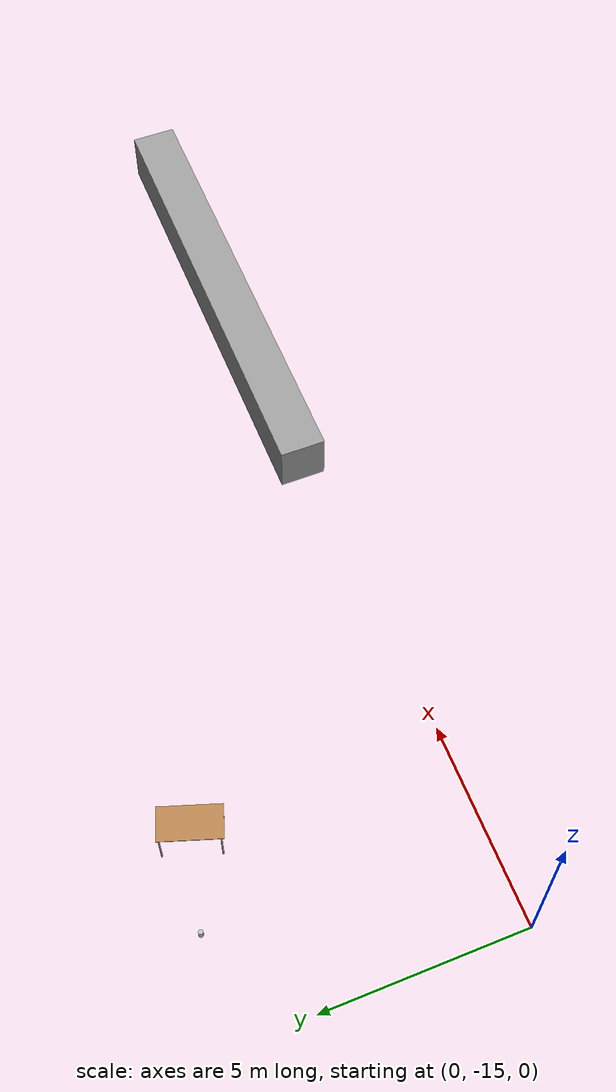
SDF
<sdf version="1.7">
 <world name="default">
  <model name="table_clone_clone">
   <static>1</static>
   <link name="link">
    <collision name="surface">
     <pose>0 0 1 0 -0 0</pose>
     <geometry><box><size>1.5 0.8 0.03</size></box></geometry>
     <surface><friction><ode><mu>0.6</mu><mu2>0.6</mu2></ode></friction></surface>
    </collision>
    <visual name="visual1">
     <pose>0 0 1 0 -0 0</pose>
     <geometry><box><size>1.5 0.8 0.03</size></box></geometry>
     <material>
      <script><uri>file://media/materials/scripts/gazebo.material</uri><name>Gazebo/Wood</name></script>
     </material>
    </visual>
    <collision name="front_left_leg">
     <pose>0.68 0.38 0.5 0 -0 0</pose>
     <geometry><cylinder><radius>0.02</radius><length>1</length></cylinder></geometry>
    </collision>
    <visual name="front_left_leg">
     <pose>0.68 0.38 0.5 0 -0 0</pose>
     <geometry><cylinder><radius>0.02</radius><length>1</length></cylinder></geometry>
     <material>
      <script><uri>file://media/materials/scripts/gazebo.material</uri><name>Gazebo/Grey</name></script>
     </material>
    </visual>
    <collision name="front_right_leg">
     <pose>0.68 -0.38 0.5 0 -0 0</pose>
     <geometry><cylinder><radius>0.02</radius><length>1</length></cylinder></geometry>
    </collision>
    <visual name="front_right_leg">
     <pose>0.68 -0.38 0.5 0 -0 0</pose>
     <geometry><cylinder><radius>0.02</radius><length>1</length></cylinder></geometry>
     <material>
      <script><uri>file://media/materials/scripts/gazebo.material</uri><name>Gazebo/Grey</name></script>
     </material>
    </visual>
    <collision name="back_right_leg">
     <pose>-0.68 -0.38 0.5 0 -0 0</pose>
     <geometry><cylinder><radius>0.02</radius><length>1</length></cylinder></geometry>
    </collision>
    <visual name="back_right_leg">
     <pose>-0.68 -0.38 0.5 0 -0 0</pose>
     <geometry><cylinder><radius>0.02</radius><length>1</length></cylinder></geometry>
     <material>
      <script><uri>file://media/materials/scripts/gazebo.material</uri><name>Gazebo/Grey</name></script>
     </material>
    </visual>
    <collision name="back_left_leg">
     <pose>-0.68 0.38 0.5 0 -0 0</pose>
     <geometry><cylinder><radius>0.02</radius><length>1</length></cylinder></geometry>
    </collision>
    <visual name="back_left_leg">
     <pose>-0.68 0.38 0.5 0 -0 0</pose>
     <geometry><cylinder><radius>0.02</radius><length>1</length></cylinder></geometry>
     <material>
      <script><uri>file://media/materials/scripts/gazebo.material</uri><name>Gazebo/Grey</name></script>
     </material>
    </visual>
   </link>
   <pose>4.5936 -8.84884 0 0 -0 1.246</pose>
  </model>
  <model name="beer">
   <link name="link">
    <pose>0 0 0.115 0 -0 0</pose>
    <inertial>
     <mass>0.39</mass>
     <inertia><ixx>0.00058</ixx><ixy>0</ixy><ixz>0</ixz><iyy>0.00058</iyy><iyz>0</iyz><izz>0.00019</izz></inertia>
    </inertial>
    <collision name="collision">
     <geometry><cylinder><radius>0.055</radius><length>0.23</length></cylinder></geometry>
    </collision>
    <visual name="visual">
     <geometry><cylinder><radius>0.055</radius><length>0.23</length></cylinder></geometry>
     <material>
      <script>
       <uri>model://beer/materials/scripts</uri>
       <uri>model://beer/materials/textures</uri>
       <name>Beer/Diffuse</name>
      </script>
     </material>
    </visual>
   </link>
   <pose>2.13172 -8.25358 1.22327 0 -0 0</pose>
  </model>
  <model name="unit_box_0">
   <pose>18.5246 -14.7013 0.5 0 -0 0</pose>
   <link name="link">
    <inertial>
     <mass>1</mass>
     <inertia>
      <ixx>0.166667</ixx>
      <ixy>0</ixy>
      <ixz>0</ixz>
      <iyy>0.166667</iyy>
      <iyz>0</iyz>
      <izz>0.166667</izz>
     </inertia>
    </inertial>
    <collision name="collision"><geometry><box><size>11.6854 1.15814 1.36557</size></box></geometry></collision>
    <visual name="visual">
     <geometry><box><size>11.6854 1.15814 1.36557</size></box></geometry>
     <material>
      <script><name>Gazebo/Grey</name><uri>file://media/materials/scripts/gazebo.material</uri></script>
     </material>
    </visual>
   </link>
  </model>
 </world>
</sdf>
